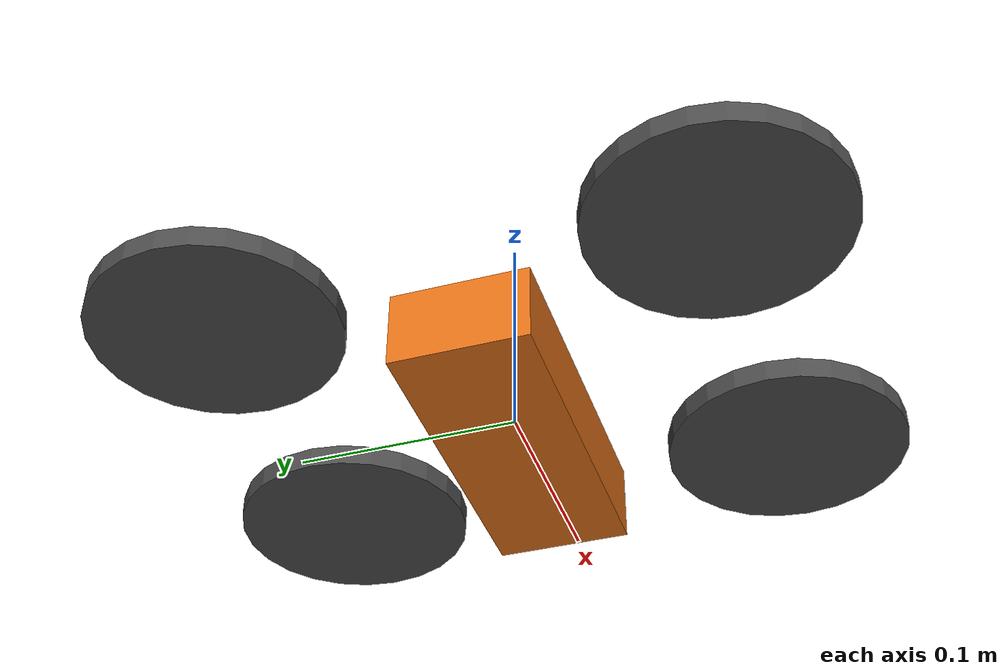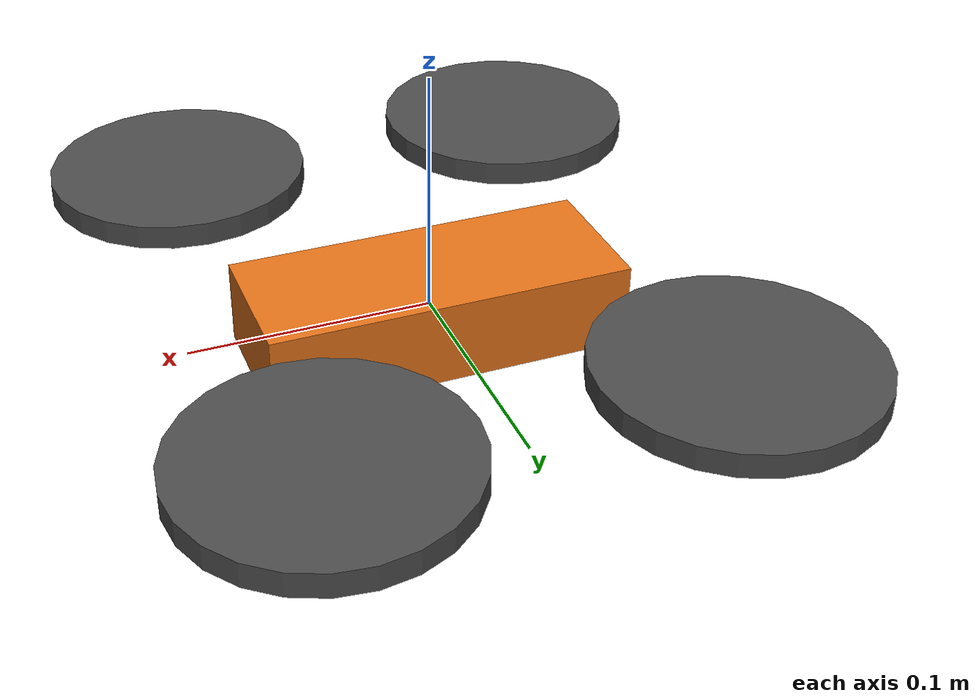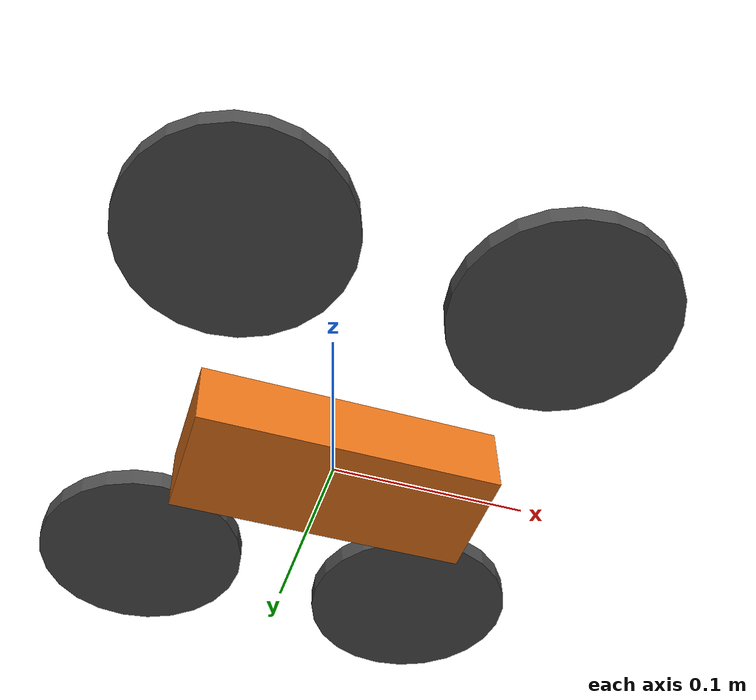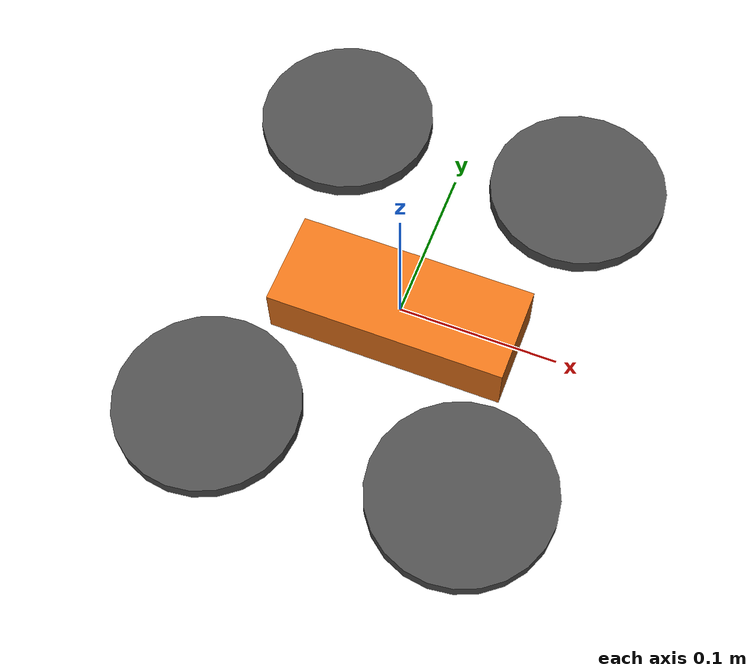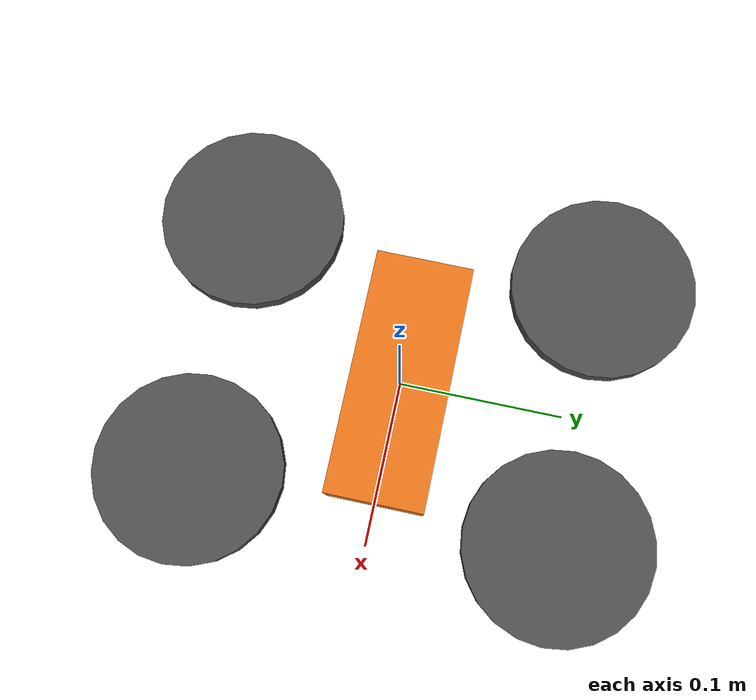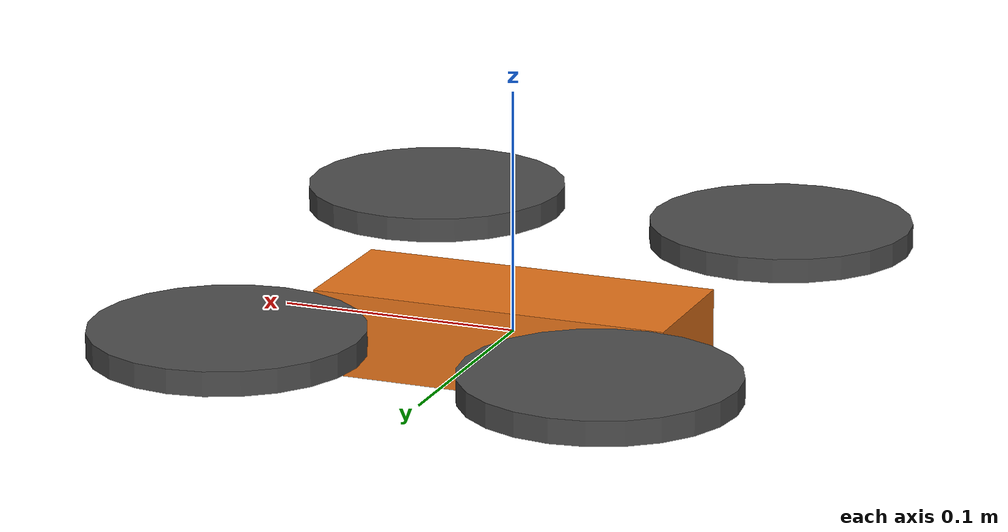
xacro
<?xml version="1.0"?>
<robot name="duckiedrone" xmlns:xacro="http://www.ros.org/wiki/xacro">

  <xacro:arg name="use_mesh" default="false"/>
  <xacro:property name="use_mesh" value="$(arg use_mesh)"/>

  <xacro:property name="M_BASE" value="0.527"/>
  <xacro:property name="M_ROTOR" value="0.027"/>
  <xacro:property name="DX" value="0.0775"/>
  <xacro:property name="DY" value="0.1075"/>

  <!-- ================= BASE LINK ================= -->
  <link name="base_link">
    <inertial>
      <mass value="${M_BASE}"/>
      <!-- uniform box 0.150 x 0.060 x 0.035 m @ 0.527 kg:
           ixx = m/12 (0.060^2+0.035^2), iyy = m/12 (0.150^2+0.035^2),
           izz = m/12 (0.150^2+0.060^2) -->
      <inertia ixx="0.000212" ixy="0.0" ixz="0.0" iyy="0.001042" iyz="0.0" izz="0.001146"/>
    </inertial>
    <visual>
      <geometry>
                <xacro:if value="${use_mesh}">
          <!-- real DD21 airframe mesh, pre-transformed: SI units, Z-up, nose +X,
               origin = base_link (motor centroid, bottom at collision bottom) -->
          <mesh filename="package://duckiedrone_description/meshes/duckiedrone_base.stl" scale="1 1 1"/>
        </xacro:if>
        <xacro:unless value="${use_mesh}">
          <box size="0.150 0.060 0.035"/>
        </xacro:unless>
      </geometry>
      <xacro:if value="${use_mesh}">
        <material name="graphite"><color rgba="0.16 0.17 0.20 1.0"/></material>
      </xacro:if>
      <xacro:unless value="${use_mesh}">
        <material name="orange"><color rgba="0.9 0.45 0.1 1.0"/></material>
      </xacro:unless>
    </visual>
    <collision>
      <geometry><box size="0.150 0.060 0.035"/></geometry>
    </collision>
  </link>

  <!-- ================= ROTORS (rectangular X layout) ================= -->
  <xacro:macro name="rotor" params="name x y">
    <link name="${name}">
      <inertial>
        <mass value="${M_ROTOR}"/>
        <!-- motor approximated as a small cylinder r=0.015 m h=0.02 m -->
        <inertia ixx="2.4e-6" ixy="0" ixz="0" iyy="2.4e-6" iyz="0" izz="3.0e-6"/>
      </inertial>
            <xacro:unless value="${use_mesh}">
        <visual>
          <geometry><cylinder radius="0.055" length="0.01"/></geometry>
          <material name="gray"><color rgba="0.3 0.3 0.3 1.0"/></material>
        </visual>
      </xacro:unless>
      <collision><geometry><cylinder radius="0.055" length="0.01"/></geometry></collision>
    </link>
    <joint name="${name}_joint" type="fixed">
      <parent link="base_link"/>
      <child link="${name}"/>
      <origin xyz="${x} ${y} 0.02" rpy="0 0 0"/>
    </joint>
  </xacro:macro>

  <xacro:rotor name="rotor_1" x="${-DX}" y="${-DY}"/>   <!-- M1 rear-right  CW -->
  <xacro:rotor name="rotor_2" x="${DX}"  y="${-DY}"/>   <!-- M2 front-right CCW -->
  <xacro:rotor name="rotor_3" x="${-DX}" y="${DY}"/>    <!-- M3 rear-left   CCW -->
  <xacro:rotor name="rotor_4" x="${DX}"  y="${DY}"/>    <!-- M4 front-left  CW -->

  <!-- ================= SENSOR FRAMES ================= -->
  <link name="imu_link">
    <inertial>
      <mass value="0.001"/>
      <inertia ixx="1e-7" ixy="0" ixz="0" iyy="1e-7" iyz="0" izz="1e-7"/>
    </inertial>
  </link>
  <joint name="imu_joint" type="fixed">
    <parent link="base_link"/><child link="imu_link"/>
    <origin xyz="0 0 0" rpy="0 0 0"/>
  </joint>
  <gazebo reference="imu_joint">
    <disableFixedJointLumping>true</disableFixedJointLumping>
  </gazebo>

  <link name="tof_link">
    <inertial>
      <mass value="0.001"/>
      <inertia ixx="1e-7" ixy="0" ixz="0" iyy="1e-7" iyz="0" izz="1e-7"/>
    </inertial>
  </link>
  <joint name="tof_joint" type="fixed">
    <parent link="base_link"/><child link="tof_link"/>
    <!-- +x of tof_link points DOWN (VL53L1X looks at the ground);
         frame flush with the belly (base half-height = 0.0175 m) -->
    <origin xyz="0 0 -0.017" rpy="0 1.5707963 0"/>
  </joint>
  <gazebo reference="tof_joint">
    <disableFixedJointLumping>true</disableFixedJointLumping>
  </gazebo>

  <link name="camera_link">
    <inertial>
      <mass value="0.001"/>
      <inertia ixx="1e-7" ixy="0" ixz="0" iyy="1e-7" iyz="0" izz="1e-7"/>
    </inertial>
  </link>
  <joint name="camera_joint" type="fixed">
    <parent link="base_link"/><child link="camera_link"/>
    <origin xyz="0.075 0 0" rpy="0 0 0"/>
  </joint>
  <gazebo reference="camera_joint">
    <disableFixedJointLumping>true</disableFixedJointLumping>
  </gazebo>

  <!-- ================= GAZEBO PLUGINS ================= -->
  <gazebo>
    <plugin name="ros_force" filename="libgazebo_ros_force.so">
      <bodyName>base_link</bodyName>
      <topicName>/dd21/wrench</topicName>
    </plugin>
  </gazebo>

  <gazebo reference="imu_link">
    <sensor type="imu" name="imu_sensor">
      <always_on>1</always_on>
      <update_rate>100</update_rate>
      <visualize>false</visualize>
      <imu>
        <noise><type>gaussian</type>
          <rate><mean>0.0</mean><stddev>0.0002</stddev><bias_mean>0.0</bias_mean><bias_stddev>0.0</bias_stddev></rate>
          <accel><mean>0.0</mean><stddev>0.017</stddev><bias_mean>0.0</bias_mean><bias_stddev>0.0</bias_stddev></accel>
        </noise>
      </imu>
      <plugin name="imu_ros" filename="libgazebo_ros_imu_sensor.so">
        <robotNamespace>/</robotNamespace>
        <topicName>imu</topicName>
        <bodyName>imu_link</bodyName>
        <frameName>imu_link</frameName>
        <initialOrientationAsReference>false</initialOrientationAsReference>
      </plugin>
    </sensor>
  </gazebo>

  <gazebo reference="tof_link">
    <sensor type="ray" name="tof_sensor">
      <always_on>1</always_on>
      <update_rate>50</update_rate>
      <visualize>false</visualize>
      <ray>
        <scan>
          <horizontal><samples>1</samples><resolution>1</resolution><min_angle>0</min_angle><max_angle>0</max_angle></horizontal>
          <vertical><samples>1</samples><resolution>1</resolution><min_angle>0</min_angle><max_angle>0</max_angle></vertical>
        </scan>
        <range><min>0.02</min><max>4.0</max><resolution>0.001</resolution></range>
      </ray>
      <plugin name="tof_ros" filename="libgazebo_ros_range.so">
        <robotNamespace>/</robotNamespace>
        <topicName>tof_range</topicName>
        <frameName>tof_link</frameName>
        <radiation>ir</radiation>
        <fov>0.436</fov>
        <gaussianNoise>0.005</gaussianNoise>
      </plugin>
    </sensor>
  </gazebo>

  <!-- materials -->
  <gazebo reference="base_link"><material>Gazebo/Orange</material></gazebo>
  <gazebo reference="rotor_1"><material>Gazebo/Gray</material></gazebo>
  <gazebo reference="rotor_2"><material>Gazebo/Gray</material></gazebo>
  <gazebo reference="rotor_3"><material>Gazebo/Gray</material></gazebo>
  <gazebo reference="rotor_4"><material>Gazebo/Gray</material></gazebo>

</robot>
